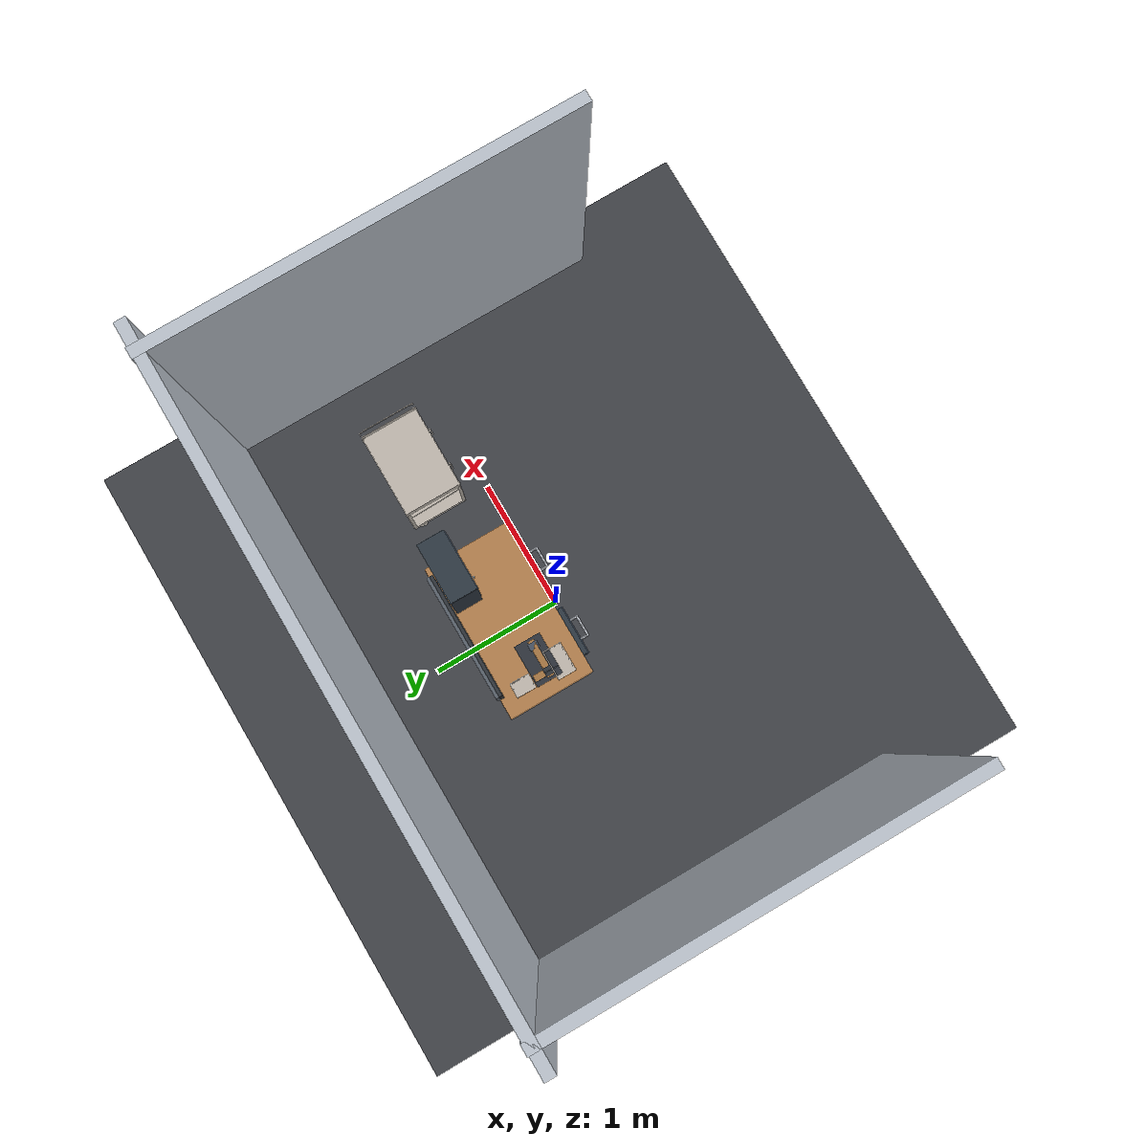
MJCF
<mujoco model="integrated single arm workshop repair cell">
  <compiler angle="radian" meshdir="workshop_realistic" texturedir="workshop_realistic"/>
  <option timestep="0.002" gravity="0 0 -9.81" integrator="implicitfast"/>
  <visual>
    <global offwidth="1920" offheight="1080"/>
    <quality shadowsize="4096"/>
    <map znear="0.01" zfar="10"/>
    <headlight ambient="0.32 0.32 0.32" diffuse="0.58 0.58 0.58" specular="0.15 0.15 0.15"/>
  </visual>
  <default>
    <geom condim="4" friction="1.0 0.03 0.01"/>
    <joint damping="6"/>
    <default class="visual">
      <geom contype="0" conaffinity="0" group="1"/>
    </default>
    <default class="collision">
      <geom contype="1" conaffinity="1" group="3" rgba="0 0 0 0"/>
    </default>
  </default>

  <asset>
    <!-- Environmental Textures and Materials -->
    <texture name="shop_floor_tex" type="2d" builtin="checker"
             rgb1="0.28 0.29 0.31" rgb2="0.22 0.23 0.25"
             width="512" height="512" mark="none"/>
    <texture name="shop_wall_tex" type="2d" builtin="gradient"
             rgb1="0.82 0.85 0.88" rgb2="0.65 0.68 0.72"
             width="512" height="512"/>
    <material name="shop_floor" texture="shop_floor_tex"
              texrepeat="12 12" reflectance="0.06"/>
    <material name="shop_wall" texture="shop_wall_tex"
              texuniform="true"/>
    <material name="cabinet_body_mat" rgba="0.18 0.22 0.26 1" reflectance="0.18"/>
    <material name="cabinet_face_mat" rgba="0.22 0.28 0.35 1" reflectance="0.22"/>
    <material name="cabinet_interior_mat" rgba="0.48 0.50 0.54 1"/>
    <material name="fixture_anodized" rgba="0.18 0.20 0.23 1" reflectance="0.25"/>
    <material name="fixture_clamp_mat" rgba="0.28 0.32 0.38 1" reflectance="0.30"/>
    <material name="pegboard_mat" rgba="0.35 0.38 0.42 1"/>
    <material name="shelf_wood" rgba="0.58 0.40 0.26 1"/>
    <material name="wood_frame_mat" rgba="0.65 0.46 0.26 1"/>
    <material name="dark_steel" rgba="0.18 0.20 0.22 1" reflectance="0.15"/>
    <material name="target_hole_mat" rgba="0.05 0.05 0.06 1"/>
    <material name="polished_steel" rgba="0.80 0.82 0.85 1" reflectance="0.45"/>
    <material name="obstruction_case_mat" rgba="0.15 0.17 0.20 1" reflectance="0.15"/>

    <!-- Mesh Assets from assets/workshop_realistic/ -->
    <mesh name="workbench_mesh" file="wooden_table_02.obj"/>
    <mesh name="tool_cart_mesh" file="tool_cart.obj"/>
    <mesh name="parts_tray_mesh" file="workshop_parts_tray.obj"/>
    <mesh name="hardware_bin_mesh" file="workshop_hardware_bin.obj"/>
    <mesh name="long_driver_mesh" file="workshop_long_phillips_driver.obj"/>
    <mesh name="stubby_driver_mesh" file="workshop_stubby_phillips_driver.obj"/>
    <mesh name="flathead_driver_mesh" file="screwdriver.obj"/>
    <mesh name="power_driver_mesh" file="Drill_01.obj"/>
    <mesh name="wooden_hammer_mesh" file="wooden_hammer_01.obj"/>
    <mesh name="pliers_mesh" file="pliers.obj"/>
    <mesh name="combination_wrench_mesh" file="combination_wrench.obj"/>
    <mesh name="medium_screw_mesh" file="workshop_medium_phillips_screw.obj"/>
    <mesh name="short_screw_mesh" file="workshop_short_phillips_screw.obj"/>
    <mesh name="hex_bolt_mesh" file="workshop_hex_bolt.obj"/>

    <!-- Textures for realistic rendering -->
    <texture name="workbench_tex" type="2d" file="wooden_table_02_diff.png"/>
    <texture name="tool_cart_tex" type="2d" file="tool_cart_diff.png"/>
    <texture name="parts_tray_tex" type="2d" file="workshop_parts_tray_diff.png"/>
    <texture name="hardware_bin_tex" type="2d" file="workshop_hardware_bin_diff.png"/>
    <texture name="screwdrivers_tex" type="2d" file="screwdrivers_02_diff.png"/>
    <texture name="screwdriver_tex" type="2d" file="screwdriver_diff.png"/>
    <texture name="drill_tex" type="2d" file="Drill_01_diff.png"/>
    <texture name="wooden_hammer_tex" type="2d" file="wooden_hammer_01_diff.png"/>
    <texture name="pliers_tex" type="2d" file="pliers_diff.png"/>
    <texture name="wrench_tex" type="2d" file="combination_wrench_diff.png"/>

    <material name="workbench_visual_mat" texture="workbench_tex"/>
    <material name="tool_cart_visual_mat" texture="tool_cart_tex" specular="0.15" shininess="0.2"/>
    <material name="parts_tray_visual_mat" texture="parts_tray_tex"/>
    <material name="hardware_bin_visual_mat" texture="hardware_bin_tex"/>
    <material name="screwdrivers_visual_mat" texture="screwdrivers_tex"/>
    <material name="screwdriver_visual_mat" texture="screwdriver_tex"/>
    <material name="drill_visual_mat" texture="drill_tex"/>
    <material name="wooden_hammer_visual_mat" texture="wooden_hammer_tex"/>
    <material name="pliers_visual_mat" texture="pliers_tex"/>
    <material name="wrench_visual_mat" texture="wrench_tex"/>
  </asset>

  <worldbody>
    <!-- Studio Workshop Key & Fill Lighting -->
    <light name="workshop_main_light" pos="-1.2 -1.0 3.0" dir="0.35 0.35 -1"
           directional="true" diffuse="0.88 0.86 0.82" specular="0.25 0.25 0.25" castshadow="true"/>
    <light name="workshop_fill_light" pos="1.5 -0.6 2.6" dir="-0.4 0.2 -1"
           directional="true" diffuse="0.52 0.58 0.68" specular="0.12 0.12 0.12"/>
    <light name="workshop_bench_light" pos="0 0.35 2.2"
           diffuse="0.68 0.65 0.58" specular="0.20 0.20 0.20"/>

    <!-- Room Geometry -->
    <geom name="workshop_floor_geom" type="plane" size="2.5 2.5 0.05"
          material="shop_floor"/>
    <geom name="workshop_north_wall" class="visual" type="box" pos="0 1.45 1.3"
          size="2.4 0.04 1.3" material="shop_wall"/>
    <geom name="workshop_west_wall" class="visual" type="box" pos="-2.2 0 1.3"
          size="0.04 1.5 1.3" material="shop_wall"/>
    <geom name="workshop_east_wall" class="visual" type="box" pos="2.2 0 1.3"
          size="0.04 1.5 1.3" material="shop_wall"/>

    <!-- Realistic Heavy-Duty Workbench with Textured Mesh Visual + Invisible Collision Proxies -->
    <body name="workbench" pos="0 0.38 0">
      <!-- Visual Textured Workbench Mesh -->
      <geom name="workbench_visual" class="visual" type="mesh" mesh="workbench_mesh"
            material="workbench_visual_mat"/>
      <!-- Invisible Physical Collision Proxies -->
      <geom name="workbench_top_col" class="collision" type="box" pos="0 0 0.66"
            size="0.60 0.325 0.02"/>
      <geom name="workbench_leg_fl_col" class="collision" type="box" pos="-0.56 -0.28 0.32"
            size="0.04 0.04 0.32"/>
      <geom name="workbench_leg_fr_col" class="collision" type="box" pos="0.56 -0.28 0.32"
            size="0.04 0.04 0.32"/>
      <geom name="workbench_leg_bl_col" class="collision" type="box" pos="-0.56 0.28 0.32"
            size="0.04 0.04 0.32"/>
      <geom name="workbench_leg_br_col" class="collision" type="box" pos="0.56 0.28 0.32"
            size="0.04 0.04 0.32"/>
    </body>

    <!-- Perforated Industrial Pegboard behind Workbench (Clean, proportionate background) -->
    <body name="workshop_pegboard" pos="0 0.70 1.05">
      <geom name="pegboard_back" class="visual" type="box" size="0.45 0.015 0.22"
            material="pegboard_mat"/>
      <geom name="pegboard_frame_top" class="visual" type="box" pos="0 -0.020 0.21"
            size="0.45 0.012 0.012" material="dark_steel"/>
      <geom name="pegboard_frame_bot" class="visual" type="box" pos="0 -0.020 -0.21"
            size="0.45 0.012 0.012" material="dark_steel"/>
      <geom name="pegboard_frame_l" class="visual" type="box" pos="-0.44 -0.020 0"
            size="0.012 0.012 0.21" material="dark_steel"/>
      <geom name="pegboard_frame_r" class="visual" type="box" pos="0.44 -0.020 0"
            size="0.012 0.012 0.21" material="dark_steel"/>
    </body>

    <!-- Rolling Industrial Tool Cart: Alternative Work Surface (WORK_SURFACE candidate) -->
    <body name="workshop_tool_cart" pos="1.28 0.40 0">
      <geom name="tool_cart_visual" class="visual" type="mesh" mesh="tool_cart_mesh"
            material="tool_cart_visual_mat"/>
      <geom name="tool_cart_top_col" class="collision" type="box" pos="0 0 0.80"
            size="0.32 0.21 0.02"/>
      <geom name="tool_cart_body_col" class="collision" type="box" pos="0 0 0.40"
            size="0.30 0.20 0.38"/>
    </body>

    <!-- Frame-joint station at the workbench's front-left working area. -->
    <body name="workshop_frame_fixture" pos="-0.34 0.34 0.68">
      <!-- Split fixture base visual: solid bottom slab (0..8mm) + hollow top slab (8..16mm) surrounding target hole -->
      <geom name="fixture_base_bottom_vis" class="visual" type="box" pos="0 0 0.004"
            size="0.16 0.10 0.004" material="fixture_anodized"/>
      <geom name="fixture_base_top_l_vis" class="visual" type="box" pos="-0.131875 0 0.012"
            size="0.028125 0.10 0.004" material="fixture_anodized"/>
      <geom name="fixture_base_top_r_vis" class="visual" type="box" pos="0.031875 0 0.012"
            size="0.128125 0.10 0.004" material="fixture_anodized"/>
      <geom name="fixture_base_top_f_vis" class="visual" type="box" pos="-0.10 -0.061875 0.012"
            size="0.00375 0.038125 0.004" material="fixture_anodized"/>
      <geom name="fixture_base_top_b_vis" class="visual" type="box" pos="-0.10 0.041875 0.012"
            size="0.00375 0.058125 0.004" material="fixture_anodized"/>
      <!-- Split fixture base collision: solid bottom slab (0..8mm) + hollow top slab (8..16mm) -->
      <geom name="fixture_base_bottom_col" class="collision" type="box" pos="0 0 0.004"
            size="0.16 0.10 0.004"/>
      <geom name="fixture_base_top_l_col" class="collision" type="box" pos="-0.131875 0 0.012"
            size="0.028125 0.10 0.004"/>
      <geom name="fixture_base_top_r_col" class="collision" type="box" pos="0.031875 0 0.012"
            size="0.128125 0.10 0.004"/>
      <geom name="fixture_base_top_f_col" class="collision" type="box" pos="-0.10 -0.061875 0.012"
            size="0.00375 0.038125 0.004"/>
      <geom name="fixture_base_top_b_col" class="collision" type="box" pos="-0.10 0.041875 0.012"
            size="0.00375 0.058125 0.004"/>

      <geom name="fixture_clamp" class="visual" type="box" pos="0.10 -0.02 0.024"
            size="0.025 0.035 0.012" material="fixture_clamp_mat"/>
      <geom name="fixture_clamp_col" class="collision" type="box" pos="0.10 -0.02 0.024"
            size="0.025 0.035 0.012"/>

      <!-- Immobilized Frame Joint Workpiece -->
      <body name="workshop_frame_joint" pos="0 0 0.016">
        <!-- Canonical repair landmarks.  The screw origin is its tip, so the
             seated site is one 30 mm engagement depth below the entry. -->
        <site name="workshop_target_hole_entry" pos="-0.10 -0.02 0.023"
              size="0.0035 0.002" type="cylinder" rgba="0.15 0.75 1 0.35"/>
        <site name="workshop_target_hole_seated_tip" pos="-0.10 -0.02 -0.007"
              size="0.002 0.002" type="sphere" rgba="0.1 1 0.25 0.35"/>
        <!-- Split horizontal wood rail visual surrounding the 7mm target hole at x=-0.10, y=-0.02 -->
        <geom name="frame_h_rail_l_vis" class="visual" type="box" pos="-0.121875 -0.02 0.010"
              size="0.018125 0.024 0.010" material="wood_frame_mat"/>
        <geom name="frame_h_rail_r_vis" class="visual" type="box" pos="0.021875 -0.02 0.010"
              size="0.118125 0.024 0.010" material="wood_frame_mat"/>
        <geom name="frame_h_rail_f_vis" class="visual" type="box" pos="-0.10 -0.033875 0.010"
              size="0.00375 0.010125 0.010" material="wood_frame_mat"/>
        <geom name="frame_h_rail_b_vis" class="visual" type="box" pos="-0.10 -0.006125 0.010"
              size="0.00375 0.010125 0.010" material="wood_frame_mat"/>
        <!-- Split horizontal wood rail collision surrounding the 7mm target hole at x=-0.10, y=-0.02 -->
        <geom name="frame_h_rail_l_col" class="collision" type="box" pos="-0.121875 -0.02 0.010"
              size="0.018125 0.024 0.010"/>
        <geom name="frame_h_rail_r_col" class="collision" type="box" pos="0.021875 -0.02 0.010"
              size="0.118125 0.024 0.010"/>
        <geom name="frame_h_rail_f_col" class="collision" type="box" pos="-0.10 -0.033875 0.010"
              size="0.00375 0.010125 0.010"/>
        <geom name="frame_h_rail_b_col" class="collision" type="box" pos="-0.10 -0.006125 0.010"
              size="0.00375 0.010125 0.010"/>

        <geom name="frame_vertical_rail" class="visual" type="box" pos="-0.10 0.04 0.010"
              size="0.024 0.050 0.010" material="wood_frame_mat"/>
        <geom name="frame_vertical_rail_col" class="collision" type="box" pos="-0.10 0.04 0.010"
              size="0.024 0.050 0.010"/>

        <!-- Split bracket visual surrounding the 7mm target hole at x=-0.10, y=-0.02 -->
        <geom name="frame_bracket_l_vis" class="visual" type="box" pos="-0.116875 -0.02 0.021"
              size="0.013125 0.030 0.002" material="dark_steel"/>
        <geom name="frame_bracket_r_vis" class="visual" type="box" pos="-0.083125 -0.02 0.021"
              size="0.013125 0.030 0.002" material="dark_steel"/>
        <geom name="frame_bracket_f_vis" class="visual" type="box" pos="-0.10 -0.036875 0.021"
              size="0.00375 0.013125 0.002" material="dark_steel"/>
        <geom name="frame_bracket_b_vis" class="visual" type="box" pos="-0.10 -0.003125 0.021"
              size="0.00375 0.013125 0.002" material="dark_steel"/>
        <!-- Split bracket collision surrounding the 7mm target hole at x=-0.10, y=-0.02 -->
        <geom name="frame_bracket_l_col" class="collision" type="box" pos="-0.116875 -0.02 0.021"
              size="0.013125 0.030 0.002"/>
        <geom name="frame_bracket_r_col" class="collision" type="box" pos="-0.083125 -0.02 0.021"
              size="0.013125 0.030 0.002"/>
        <geom name="frame_bracket_f_col" class="collision" type="box" pos="-0.10 -0.036875 0.021"
              size="0.00375 0.013125 0.002"/>
        <geom name="frame_bracket_b_col" class="collision" type="box" pos="-0.10 -0.003125 0.021"
              size="0.00375 0.013125 0.002"/>

        <!-- Clear recessed target screw hole: 7mm diameter (3.5mm radius), 30mm depth with dark bottom surface -->
        <geom name="frame_target_hole_bottom" class="visual" type="cylinder" pos="-0.10 -0.02 -0.007"
              size="0.0035 0.0005" material="target_hole_mat"/>
      </body>
    </body>

    <!-- Parts Staging Tray: SMALL_PARTS_CONTAINER Candidate (Front-Left Tabletop) -->
    <body name="workshop_parts_tray" pos="-0.42 0.22 0.68">
      <geom name="parts_tray_visual" class="visual" type="mesh" mesh="parts_tray_mesh"
            material="parts_tray_visual_mat"/>
      <!-- Invisible hollow collision proxies -->
      <geom name="parts_tray_base_col" class="collision" type="box" pos="0 0 0.004"
            size="0.11 0.07 0.004"/>
      <geom name="parts_tray_wall_l_col" class="collision" type="box" pos="-0.106 0 0.018"
            size="0.004 0.07 0.014"/>
      <geom name="parts_tray_wall_r_col" class="collision" type="box" pos="0.106 0 0.018"
            size="0.004 0.07 0.014"/>
      <geom name="parts_tray_wall_f_col" class="collision" type="box" pos="0 -0.066 0.018"
            size="0.11 0.004 0.014"/>
      <geom name="parts_tray_wall_b_col" class="collision" type="box" pos="0 0.066 0.018"
            size="0.11 0.004 0.014"/>
    </body>

    <!-- Small Hardware Storage Bin: SMALL_PARTS_CONTAINER Candidate (Back-Left Tabletop) -->
    <body name="workshop_hardware_bin" pos="-0.44 0.52 0.68">
      <geom name="hardware_bin_visual" class="visual" type="mesh" mesh="hardware_bin_mesh"
            material="hardware_bin_visual_mat"/>
      <!-- Invisible hollow collision proxies -->
      <geom name="hardware_bin_base_col" class="collision" type="box" pos="0 0 0.003"
            size="0.055 0.075 0.003"/>
      <geom name="hardware_bin_wall_l_col" class="collision" type="box" pos="-0.052 0 0.03"
            size="0.003 0.075 0.03"/>
      <geom name="hardware_bin_wall_r_col" class="collision" type="box" pos="0.052 0 0.03"
            size="0.003 0.075 0.03"/>
      <geom name="hardware_bin_wall_b_col" class="collision" type="box" pos="0 0.072 0.04"
            size="0.055 0.003 0.04"/>
      <geom name="hardware_bin_wall_f_col" class="collision" type="box" pos="0 -0.072 0.019"
            size="0.055 0.003 0.019"/>
    </body>

    <body name="left_tool_drawer_frame" pos="-0.28 0.155 0.524">
      <geom name="left_drawer_back" class="visual" type="box" size="0.18 0.005 0.06" pos="0 0.14 0" material="cabinet_body_mat"/>
      <geom name="left_drawer_side_l" class="visual" type="box" size="0.005 0.14 0.06" pos="-0.18 0 0" material="cabinet_body_mat"/>
      <geom name="left_drawer_side_r" class="visual" type="box" size="0.005 0.14 0.06" pos="0.18 0 0" material="cabinet_body_mat"/>
      <geom name="left_drawer_shell_bottom" class="visual" type="box" size="0.18 0.14 0.005" pos="0 0 -0.06" material="cabinet_body_mat"/>
      <geom name="left_drawer_shell_top" class="visual" type="box" size="0.18 0.14 0.008" pos="0 0 0.072" material="cabinet_body_mat"/>
      <geom name="left_drawer_back_col" class="collision" type="box" size="0.18 0.005 0.06" pos="0 0.14 0"/>
      <geom name="left_drawer_shell_side_l_col" class="collision" type="box" size="0.005 0.14 0.06" pos="-0.18 0 0"/>
      <geom name="left_drawer_shell_side_r_col" class="collision" type="box" size="0.005 0.14 0.06" pos="0.18 0 0"/>
      <geom name="left_drawer_shell_bottom_col" class="collision" type="box" size="0.18 0.14 0.005" pos="0 0 -0.06"/>
      <geom name="left_drawer_shell_top_col" class="collision" type="box" size="0.18 0.14 0.008" pos="0 0 0.072"/>
      <body name="left_tool_drawer" pos="0 0 0">
        <joint name="left_tool_drawer_slide" type="slide" axis="0 -1 0" range="0 0.25" limited="true" damping="2"/>
        <geom name="left_drawer_floor" class="visual" type="box" size="0.17 0.13 0.003" pos="0 0 -0.055" material="cabinet_interior_mat"/>
        <geom name="left_drawer_tray_side_l" class="visual" type="box" size="0.004 0.13 0.03" pos="-0.166 0 -0.025" material="cabinet_interior_mat"/>
        <geom name="left_drawer_tray_side_r" class="visual" type="box" size="0.004 0.13 0.03" pos="0.166 0 -0.025" material="cabinet_interior_mat"/>
        <geom name="left_drawer_tray_back" class="visual" type="box" size="0.17 0.004 0.03" pos="0 0.126 -0.025" material="cabinet_interior_mat"/>
        <geom name="left_drawer_front" class="visual" type="box" size="0.185 0.008 0.065" pos="0 -0.14 0" material="cabinet_face_mat"/>
        <geom name="left_drawer_handle_left" class="visual" type="capsule" size="0.007" fromto="-0.075 -0.148 0 -0.075 -0.205 0" material="polished_steel"/>
        <geom name="left_drawer_handle_right" class="visual" type="capsule" size="0.007" fromto="0.075 -0.148 0 0.075 -0.205 0" material="polished_steel"/>
        <geom name="left_drawer_handle_bar" class="visual" type="capsule" size="0.008" fromto="-0.075 -0.205 0 0.075 -0.205 0" material="polished_steel"/>
        <site name="left_drawer_handle_grasp" pos="0 -0.205 0" size="0.012" rgba="0 0 0 0" group="5"/>
        <site name="left_drawer_interior" pos="0 0 -0.04" size="0.15 0.10 0.01" type="box" rgba="0 0 1 0.1" group="4"/>
        <geom name="left_drawer_col_floor" class="collision" type="box" size="0.17 0.13 0.003" pos="0 0 -0.055"/>
        <geom name="left_drawer_col_side_l" class="collision" type="box" size="0.004 0.13 0.03" pos="-0.166 0 -0.025"/>
        <geom name="left_drawer_col_side_r" class="collision" type="box" size="0.004 0.13 0.03" pos="0.166 0 -0.025"/>
        <geom name="left_drawer_col_front" class="collision" type="box" size="0.185 0.008 0.065" pos="0 -0.14 0"/>
        <geom name="left_drawer_handle_left_col" class="collision" type="capsule" size="0.007" fromto="-0.075 -0.148 0 -0.075 -0.205 0"/>
        <geom name="left_drawer_handle_right_col" class="collision" type="capsule" size="0.007" fromto="0.075 -0.148 0 0.075 -0.205 0"/>
        <geom name="left_drawer_handle_col" class="collision" type="capsule" size="0.008" fromto="-0.075 -0.205 0 0.075 -0.205 0"/>
      </body>
    </body>

    <body name="right_tool_drawer_frame" pos="0.28 0.155 0.524">
      <geom name="right_drawer_back" class="visual" type="box" size="0.18 0.005 0.06" pos="0 0.14 0" material="cabinet_body_mat"/>
      <geom name="right_drawer_side_l" class="visual" type="box" size="0.005 0.14 0.06" pos="-0.18 0 0" material="cabinet_body_mat"/>
      <geom name="right_drawer_side_r" class="visual" type="box" size="0.005 0.14 0.06" pos="0.18 0 0" material="cabinet_body_mat"/>
      <geom name="right_drawer_shell_bottom" class="visual" type="box" size="0.18 0.14 0.005" pos="0 0 -0.06" material="cabinet_body_mat"/>
      <geom name="right_drawer_shell_top" class="visual" type="box" size="0.18 0.14 0.008" pos="0 0 0.072" material="cabinet_body_mat"/>
      <geom name="right_drawer_back_col" class="collision" type="box" size="0.18 0.005 0.06" pos="0 0.14 0"/>
      <geom name="right_drawer_shell_side_l_col" class="collision" type="box" size="0.005 0.14 0.06" pos="-0.18 0 0"/>
      <geom name="right_drawer_shell_side_r_col" class="collision" type="box" size="0.005 0.14 0.06" pos="0.18 0 0"/>
      <geom name="right_drawer_shell_bottom_col" class="collision" type="box" size="0.18 0.14 0.005" pos="0 0 -0.06"/>
      <geom name="right_drawer_shell_top_col" class="collision" type="box" size="0.18 0.14 0.008" pos="0 0 0.072"/>
      <body name="right_tool_drawer" pos="0 0 0">
        <joint name="right_tool_drawer_slide" type="slide" axis="0 -1 0" range="0 0.25" limited="true" damping="2"/>
        <geom name="right_drawer_floor" class="visual" type="box" size="0.17 0.13 0.003" pos="0 0 -0.055" material="cabinet_interior_mat"/>
        <geom name="right_drawer_tray_side_l" class="visual" type="box" size="0.004 0.13 0.03" pos="-0.166 0 -0.025" material="cabinet_interior_mat"/>
        <geom name="right_drawer_tray_side_r" class="visual" type="box" size="0.004 0.13 0.03" pos="0.166 0 -0.025" material="cabinet_interior_mat"/>
        <geom name="right_drawer_tray_back" class="visual" type="box" size="0.17 0.004 0.03" pos="0 0.126 -0.025" material="cabinet_interior_mat"/>
        <geom name="right_drawer_front" class="visual" type="box" size="0.185 0.008 0.065" pos="0 -0.14 0" material="cabinet_face_mat"/>
        <geom name="right_drawer_handle_left" class="visual" type="capsule" size="0.007" fromto="-0.075 -0.148 0 -0.075 -0.205 0" material="polished_steel"/>
        <geom name="right_drawer_handle_right" class="visual" type="capsule" size="0.007" fromto="0.075 -0.148 0 0.075 -0.205 0" material="polished_steel"/>
        <geom name="right_drawer_handle_bar" class="visual" type="capsule" size="0.008" fromto="-0.075 -0.205 0 0.075 -0.205 0" material="polished_steel"/>
        <site name="right_drawer_handle_grasp" pos="0 -0.205 0" size="0.012" rgba="0 0 0 0" group="5"/>
        <site name="right_drawer_interior" pos="0 0 -0.04" size="0.15 0.10 0.01" type="box" rgba="0 0 1 0.1" group="4"/>
        <geom name="right_drawer_col_floor" class="collision" type="box" size="0.17 0.13 0.003" pos="0 0 -0.055"/>
        <geom name="right_drawer_col_side_l" class="collision" type="box" size="0.004 0.13 0.03" pos="-0.166 0 -0.025"/>
        <geom name="right_drawer_col_side_r" class="collision" type="box" size="0.004 0.13 0.03" pos="0.166 0 -0.025"/>
        <geom name="right_drawer_col_front" class="collision" type="box" size="0.185 0.008 0.065" pos="0 -0.14 0"/>
        <geom name="right_drawer_handle_left_col" class="collision" type="capsule" size="0.007" fromto="-0.075 -0.148 0 -0.075 -0.205 0"/>
        <geom name="right_drawer_handle_right_col" class="collision" type="capsule" size="0.007" fromto="0.075 -0.148 0 0.075 -0.205 0"/>
        <geom name="right_drawer_handle_col" class="collision" type="capsule" size="0.008" fromto="-0.075 -0.205 0 0.075 -0.205 0"/>
      </body>
    </body>

    <!-- Storage Region 3: TOOL_CABINET (Compact Tabletop Cabinet placed neatly at Back-Right) -->
    <body name="tool_cabinet" pos="0.44 0.56 0.68">
      <geom name="cabinet_bottom" class="visual" type="box" pos="0 0 0.008"
            size="0.22 0.10 0.008" material="cabinet_body_mat"/>
      <geom name="cabinet_top" class="visual" type="box" pos="0 0 0.65"
            size="0.22 0.10 0.008" material="cabinet_body_mat"/>
      <geom name="cabinet_left" class="visual" type="box" pos="-0.215 0 0.325"
            size="0.008 0.10 0.325" material="cabinet_body_mat"/>
      <geom name="cabinet_right" class="visual" type="box" pos="0.215 0 0.325"
            size="0.008 0.10 0.325" material="cabinet_body_mat"/>
      <geom name="cabinet_back" class="visual" type="box" pos="0 0.092 0.325"
            size="0.215 0.008 0.325" material="cabinet_body_mat"/>
      <geom name="cabinet_shelf" class="visual" type="box" pos="0 0.01 0.08"
            size="0.208 0.075 0.006" material="cabinet_interior_mat"/>
      <!-- Invisible collision proxies -->
      <geom name="cabinet_col_bottom" class="collision" type="box" pos="0 0 0.008"
            size="0.22 0.10 0.008"/>
      <geom name="cabinet_col_top" class="collision" type="box" pos="0 0 0.65"
            size="0.22 0.10 0.008"/>
      <geom name="cabinet_col_left" class="collision" type="box" pos="-0.215 0 0.325"
            size="0.008 0.10 0.325"/>
      <geom name="cabinet_col_right" class="collision" type="box" pos="0.215 0 0.325"
            size="0.008 0.10 0.325"/>
      <geom name="cabinet_col_back" class="collision" type="box" pos="0 0.092 0.325"
            size="0.215 0.008 0.325"/>
      <geom name="cabinet_shelf_col" class="collision" type="box" pos="0 0.01 0.08"
            size="0.208 0.075 0.006"/>

      <!-- Hinged Cabinet Door opening outward to the right -->
      <body name="tool_cabinet_door" pos="0.215 -0.10 0.325">
        <joint name="tool_cabinet_door_hinge" type="hinge" axis="0 0 1"
               range="0 1.57" limited="true" damping="4"/>
        <geom name="tool_cabinet_door_panel" class="visual" type="box" pos="-0.21 0 0"
              size="0.21 0.006 0.305" material="cabinet_face_mat"/>
        <geom name="tool_cabinet_door_col" class="collision" type="box" pos="-0.21 0 0"
              size="0.20 0.005 0.295"/>
        <geom name="tool_cabinet_door_handle" class="visual" type="capsule"
              fromto="-0.32 -0.02 -0.03 -0.32 -0.02 0.03" size="0.005"
              material="polished_steel"/>
        <geom name="tool_cabinet_door_handle_col" class="collision" type="capsule"
              fromto="-0.32 -0.02 -0.03 -0.32 -0.02 0.03" size="0.005"/>
        <site name="tool_cabinet_door_handle_grasp" pos="-0.32 -0.02 0"
              size="0.004" rgba="0 0 0 0"/>
      </body>
    </body>

    <!-- 5 Calibrated Workshop Cameras -->
    <camera name="workshop_camera_left" pos="-1.30 -0.85 1.50"
            xyaxes="0.78 -0.62 0 0.34 0.43 0.83" fovy="62"/>
    <camera name="workshop_camera_right" pos="1.30 -0.85 1.50"
            xyaxes="0.78 0.62 0 -0.34 0.43 0.83" fovy="62"/>
    <camera name="workshop_camera_top" pos="0 0.28 2.20"
            xyaxes="1 0 0 0 1 0" fovy="64"/>
    <camera name="workshop_camera_front" pos="0.0 -1.50 1.60"
            xyaxes="1 0 0 0 0.58 0.81" fovy="60"/>
    <camera name="workshop_camera_close" pos="-0.10 -0.15 1.15"
            xyaxes="0.95 0.30 0 -0.20 0.65 0.73" fovy="56"/>
    <!-- Action-detail cameras used in the fifth video tile.  Target-body mode
         keeps the relevant mechanism centered as drawers and doors move. -->
    <camera name="workshop_camera_left_drawer_detail" mode="targetbody"
            target="left_tool_drawer" pos="-0.72 -0.72 0.82" fovy="48"/>
    <camera name="workshop_camera_right_drawer_detail" mode="targetbody"
            target="right_tool_drawer" pos="0.72 -0.72 0.82" fovy="48"/>
    <camera name="workshop_camera_cabinet_detail" pos="0.15 -0.15 1.05"
            xyaxes="0.92575 -0.37813 0 0.10426 0.25526 0.96123" fovy="42"/>
    <camera name="workshop_camera_cabinet_detail_swapped" pos="-0.20 -0.15 1.05"
            xyaxes="0.92575 0.37813 0 -0.10426 0.25526 0.96123" fovy="42"/>
    <camera name="workshop_camera_repair_detail" pos="-0.55 0.10 0.85"
            xyaxes="0.78488 -0.61964 0 0.16643 0.21081 0.96325" fovy="28"/>
  </worldbody>

  <contact>
    <exclude body1="left_tool_drawer_frame" body2="left_tool_drawer"/>
    <exclude body1="right_tool_drawer_frame" body2="right_tool_drawer"/>
  </contact>

  <actuator>
    <position name="left_tool_drawer_actuator"
              joint="left_tool_drawer_slide" kp="10000" ctrlrange="0 0.25"/>
    <position name="right_tool_drawer_actuator"
              joint="right_tool_drawer_slide" kp="10000" ctrlrange="0 0.25"/>
    <position name="tool_cabinet_door_actuator"
              joint="tool_cabinet_door_hinge" kp="300" ctrlrange="0 1.57"/>
  </actuator>
</mujoco>
